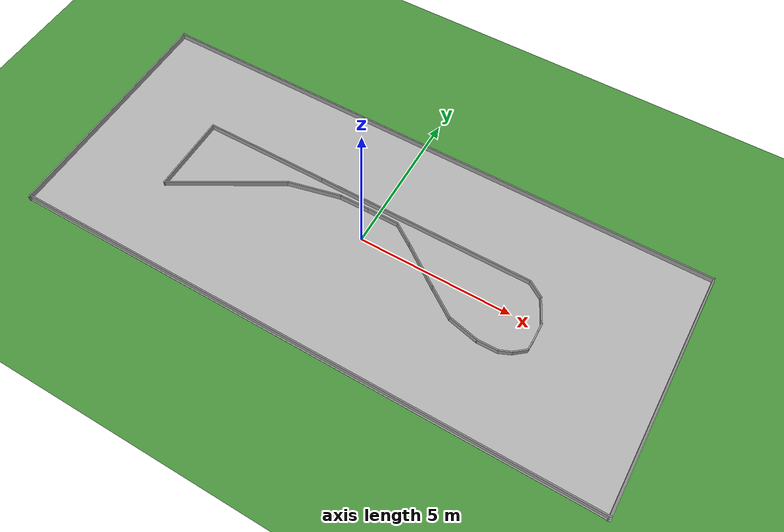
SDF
<sdf version="1.5">
 <world name="default">
  <light name="sun" type="directional">
   <cast_shadows>0</cast_shadows>
   <pose>0 0 10 0 -0 0</pose>
   <diffuse>0.8 0.8 0.8 1</diffuse>
   <specular>0.2 0.2 0.2 1</specular>
   <attenuation>
    <range>1000</range>
    <constant>0.9</constant>
    <linear>0.01</linear>
    <quadratic>0.001</quadratic>
   </attenuation>
   <direction>-0.5 0.1 -0.9</direction>
  </light>
  <scene>
   <sky><clouds><speed>1</speed></clouds></sky>
   <ambient>0.4 0.4 0.4 1</ambient>
   <background>0.7 0.7 0.7 1</background>
   <shadows>1</shadows>
  </scene>
  <physics name="default_physics" default="0" type="ode">
   <real_time_update_rate>1000</real_time_update_rate>
   <ode>
    <solver>
     <type>quick</type>
     <iters>70</iters>
     <sor>1.3</sor>
     <use_dynamic_moi_rescaling>0</use_dynamic_moi_rescaling>
    </solver>
    <constraints>
     <cfm>0</cfm>
     <erp>0.2</erp>
     <contact_max_correcting_vel>100</contact_max_correcting_vel>
     <contact_surface_layer>0.001</contact_surface_layer>
    </constraints>
   </ode>
   <max_step_size>0.001</max_step_size>
   <real_time_factor>1</real_time_factor>
  </physics>
  <scene><ambient>0.4 0.4 0.4 1</ambient><background>0.7 0.7 0.7 1</background><shadows>1</shadows></scene>
  <spherical_coordinates>
   <surface_model>EARTH_WGS84</surface_model>
   <latitude_deg>0</latitude_deg>
   <longitude_deg>0</longitude_deg>
   <elevation>0</elevation>
   <heading_deg>0</heading_deg>
  </spherical_coordinates>
  <model name="ground_grass">
   <static>1</static>
   <link name="ground_grass">
    <collision name="collision">
     <geometry><plane><normal>0 0 1</normal><size>50 50</size></plane></geometry>
     <surface><friction><ode><mu>100</mu><mu2>50</mu2></ode></friction></surface>
    </collision>
    <visual name="visual_ground">
     <cast_shadows>0</cast_shadows>
     <pose>0 0 0.005 0 -0 0</pose>
     <geometry><plane><normal>0 0 1</normal><size>50 50</size></plane></geometry>
     <material>
      <script>
       <uri>model://ground_grass/materials/scripts</uri>
       <uri>model://ground_grass/materials/textures</uri>
       <name>Floor/Grass</name>
      </script>
     </material>
    </visual>
    <velocity_decay><linear>0</linear><angular>0</angular></velocity_decay>
   </link>
  </model>
  <model name="ucsd_track_v1">
   <static>1</static>
   <link name="link_track">
    <collision name="collision">
     <geometry><plane><normal>0 0 1</normal><size>19.431 8.0264</size></plane></geometry>
     <surface><friction><ode><mu>100</mu><mu2>50</mu2></ode></friction></surface>
    </collision>
    <visual name="visual_ground">
     <cast_shadows>0</cast_shadows>
     <pose>0 0 0.005 0 -0 0</pose>
     <geometry><plane><normal>0 0 1</normal><size>19.431 8.0264</size></plane></geometry>
     <material>
      <script>
       <uri>model://ucsd_track_v1/materials/scripts</uri>
       <uri>model://ucsd_track_v1/materials/textures</uri>
       <name>Floor/Image</name>
      </script>
     </material>
    </visual>
    <velocity_decay><linear>0</linear><angular>0</angular></velocity_decay>
   </link>
   <pose>0 0 0.001 0 -0 0</pose>
  </model>
  <gravity>0 0 -9.8</gravity>
  <magnetic_field>6e-06 2.3e-05 -4.2e-05</magnetic_field>
  <atmosphere type="adiabatic"/>
  <model name="grey_wall_3">
   <link name="link">
    <pose>0.713484 -0.011654 1.4 0 -0 0</pose>
    <inertial>
     <inertia><ixx>nan</ixx><ixy>0</ixy><ixz>0</ixz><iyy>nan</iyy><iyz>0</iyz><izz>nan</izz></inertia>
     <mass>0</mass>
    </inertial>
    <visual name="visual">
     <cast_shadows>0</cast_shadows>
     <geometry><box><size>19.3332 0.043266 0.226147</size></box></geometry>
     <material>
      <script>
       <uri>model://grey_wall/materials/scripts</uri>
       <uri>model://grey_wall/materials/textures</uri>
       <name>vrc/grey_wall</name>
      </script>
      <ambient>1 1 1 1</ambient>
      <diffuse>1 1 1 1</diffuse>
      <specular>0 0 0 1</specular>
      <emissive>0 0 0 1</emissive>
     </material>
    </visual>
    <collision name="collision">
     <geometry><box><size>19.3332 0.043266 0.226147</size></box></geometry>
     <surface>
      <friction>
       <ode><mu>1</mu><mu2>1</mu2><fdir1>0 0 0</fdir1><slip1>0</slip1><slip2>0</slip2></ode>
       <torsional>
        <coefficient>1</coefficient>
        <patch_radius>0</patch_radius>
        <surface_radius>0</surface_radius>
        <use_patch_radius>1</use_patch_radius>
        <ode><slip>0</slip></ode>
       </torsional>
      </friction>
      <bounce><restitution_coefficient>0</restitution_coefficient><threshold>1e+06</threshold></bounce>
      <contact>
       <collide_without_contact>0</collide_without_contact>
       <collide_without_contact_bitmask>1</collide_without_contact_bitmask>
       <collide_bitmask>1</collide_bitmask>
       <ode>
        <soft_cfm>0</soft_cfm>
        <soft_erp>0.2</soft_erp>
        <kp>1e+13</kp>
        <kd>1</kd>
        <max_vel>0.01</max_vel>
        <min_depth>0</min_depth>
       </ode>
       <bullet>
        <split_impulse>1</split_impulse>
        <split_impulse_penetration_threshold>-0.01</split_impulse_penetration_threshold>
        <soft_cfm>0</soft_cfm>
        <soft_erp>0.2</soft_erp>
        <kp>1e+13</kp>
        <kd>1</kd>
       </bullet>
      </contact>
     </surface>
    </collision>
   </link>
   <static>1</static>
   <pose>-0.716038 4.0109 -1.30508 0 -0 0</pose>
  </model>
  <model name="grey_wall_4">
   <link name="link">
    <pose>0.713484 -0.011654 1.4 0 -0 0</pose>
    <inertial>
     <inertia><ixx>nan</ixx><ixy>0</ixy><ixz>0</ixz><iyy>nan</iyy><iyz>0</iyz><izz>nan</izz></inertia>
     <mass>0</mass>
    </inertial>
    <visual name="visual">
     <cast_shadows>0</cast_shadows>
     <geometry><box><size>19.3332 0.043266 0.226147</size></box></geometry>
     <material>
      <script>
       <uri>model://grey_wall/materials/scripts</uri>
       <uri>model://grey_wall/materials/textures</uri>
       <name>vrc/grey_wall</name>
      </script>
      <ambient>1 1 1 1</ambient>
      <diffuse>1 1 1 1</diffuse>
      <specular>0 0 0 1</specular>
      <emissive>0 0 0 1</emissive>
     </material>
    </visual>
    <collision name="collision">
     <geometry><box><size>19.3332 0.043266 0.226147</size></box></geometry>
     <surface>
      <friction>
       <ode><mu>1</mu><mu2>1</mu2><fdir1>0 0 0</fdir1><slip1>0</slip1><slip2>0</slip2></ode>
       <torsional>
        <coefficient>1</coefficient>
        <patch_radius>0</patch_radius>
        <surface_radius>0</surface_radius>
        <use_patch_radius>1</use_patch_radius>
        <ode><slip>0</slip></ode>
       </torsional>
      </friction>
      <bounce><restitution_coefficient>0</restitution_coefficient><threshold>1e+06</threshold></bounce>
      <contact>
       <collide_without_contact>0</collide_without_contact>
       <collide_without_contact_bitmask>1</collide_without_contact_bitmask>
       <collide_bitmask>1</collide_bitmask>
       <ode>
        <soft_cfm>0</soft_cfm>
        <soft_erp>0.2</soft_erp>
        <kp>1e+13</kp>
        <kd>1</kd>
        <max_vel>0.01</max_vel>
        <min_depth>0</min_depth>
       </ode>
       <bullet>
        <split_impulse>1</split_impulse>
        <split_impulse_penetration_threshold>-0.01</split_impulse_penetration_threshold>
        <soft_cfm>0</soft_cfm>
        <soft_erp>0.2</soft_erp>
        <kp>1e+13</kp>
        <kd>1</kd>
       </bullet>
      </contact>
     </surface>
    </collision>
   </link>
   <static>1</static>
   <pose>-0.701966 -3.93959 -1.30508 0 -0 0</pose>
  </model>
  <model name="grey_wall_5">
   <link name="link">
    <pose>-0.467859 -0.097477 1.4 0 -0 0.009516</pose>
    <inertial>
     <inertia><ixx>nan</ixx><ixy>0</ixy><ixz>0</ixz><iyy>nan</iyy><iyz>0</iyz><izz>nan</izz></inertia>
     <mass>0</mass>
    </inertial>
    <visual name="visual">
     <cast_shadows>0</cast_shadows>
     <geometry><box><size>8.07319 0.043266 0.226147</size></box></geometry>
     <material>
      <script>
       <uri>model://grey_wall/materials/scripts</uri>
       <uri>model://grey_wall/materials/textures</uri>
       <name>vrc/grey_wall</name>
      </script>
      <ambient>1 1 1 1</ambient>
      <diffuse>1 1 1 1</diffuse>
      <specular>0 0 0 1</specular>
      <emissive>0 0 0 1</emissive>
     </material>
    </visual>
    <collision name="collision">
     <geometry><box><size>8.07319 0.043266 0.226147</size></box></geometry>
     <surface>
      <friction>
       <ode><mu>1</mu><mu2>1</mu2><fdir1>0 0 0</fdir1><slip1>0</slip1><slip2>0</slip2></ode>
       <torsional>
        <coefficient>1</coefficient>
        <patch_radius>0</patch_radius>
        <surface_radius>0</surface_radius>
        <use_patch_radius>1</use_patch_radius>
        <ode><slip>0</slip></ode>
       </torsional>
      </friction>
      <bounce><restitution_coefficient>0</restitution_coefficient><threshold>1e+06</threshold></bounce>
      <contact>
       <collide_without_contact>0</collide_without_contact>
       <collide_without_contact_bitmask>1</collide_without_contact_bitmask>
       <collide_bitmask>1</collide_bitmask>
       <ode>
        <soft_cfm>0</soft_cfm>
        <soft_erp>0.2</soft_erp>
        <kp>1e+13</kp>
        <kd>1</kd>
        <max_vel>0.01</max_vel>
        <min_depth>0</min_depth>
       </ode>
       <bullet>
        <split_impulse>1</split_impulse>
        <split_impulse_penetration_threshold>-0.01</split_impulse_penetration_threshold>
        <soft_cfm>0</soft_cfm>
        <soft_erp>0.2</soft_erp>
        <kp>1e+13</kp>
        <kd>1</kd>
       </bullet>
      </contact>
     </surface>
    </collision>
   </link>
   <static>1</static>
   <pose>-9.73386 0.474907 -1.30963 0 -0 1.55954</pose>
  </model>
  <model name="grey_wall_6">
   <link name="link">
    <pose>-0.467859 -0.097477 1.4 0 -0 0.009516</pose>
    <inertial>
     <inertia><ixx>nan</ixx><ixy>0</ixy><ixz>0</ixz><iyy>nan</iyy><iyz>0</iyz><izz>nan</izz></inertia>
     <mass>0</mass>
    </inertial>
    <visual name="visual">
     <cast_shadows>0</cast_shadows>
     <geometry><box><size>8.07319 0.043266 0.226147</size></box></geometry>
     <material>
      <script>
       <uri>model://grey_wall/materials/scripts</uri>
       <uri>model://grey_wall/materials/textures</uri>
       <name>vrc/grey_wall</name>
      </script>
      <ambient>1 1 1 1</ambient>
      <diffuse>1 1 1 1</diffuse>
      <specular>0 0 0 1</specular>
      <emissive>0 0 0 1</emissive>
     </material>
    </visual>
    <collision name="collision">
     <geometry><box><size>8.07319 0.043266 0.226147</size></box></geometry>
     <surface>
      <friction>
       <ode><mu>1</mu><mu2>1</mu2><fdir1>0 0 0</fdir1><slip1>0</slip1><slip2>0</slip2></ode>
       <torsional>
        <coefficient>1</coefficient>
        <patch_radius>0</patch_radius>
        <surface_radius>0</surface_radius>
        <use_patch_radius>1</use_patch_radius>
        <ode><slip>0</slip></ode>
       </torsional>
      </friction>
      <bounce><restitution_coefficient>0</restitution_coefficient><threshold>1e+06</threshold></bounce>
      <contact>
       <collide_without_contact>0</collide_without_contact>
       <collide_without_contact_bitmask>1</collide_without_contact_bitmask>
       <collide_bitmask>1</collide_bitmask>
       <ode>
        <soft_cfm>0</soft_cfm>
        <soft_erp>0.2</soft_erp>
        <kp>1e+13</kp>
        <kd>1</kd>
        <max_vel>0.01</max_vel>
        <min_depth>0</min_depth>
       </ode>
       <bullet>
        <split_impulse>1</split_impulse>
        <split_impulse_penetration_threshold>-0.01</split_impulse_penetration_threshold>
        <soft_cfm>0</soft_cfm>
        <soft_erp>0.2</soft_erp>
        <kp>1e+13</kp>
        <kd>1</kd>
       </bullet>
      </contact>
     </surface>
    </collision>
   </link>
   <static>1</static>
   <pose>9.5596 0.474996 -1.30963 0 -0 1.55954</pose>
  </model>
  <model name="grey_wall_t_17_0">
   <link name="link">
    <pose>-0.003902 -0.714228 1.4 0 -0 0</pose>
    <inertial>
     <inertia><ixx>nan</ixx><ixy>0</ixy><ixz>0</ixz><iyy>nan</iyy><iyz>0</iyz><izz>nan</izz></inertia>
     <mass>0</mass>
    </inertial>
    <visual name="visual">
     <cast_shadows>0</cast_shadows>
     <geometry><box><size>7.20978 0.043266 0.226147</size></box></geometry>
     <material>
      <script>
       <uri>model://grey_wall/materials/scripts</uri>
       <uri>model://grey_wall/materials/textures</uri>
       <name>vrc/grey_wall</name>
      </script>
      <ambient>1 1 1 1</ambient>
      <diffuse>1 1 1 1</diffuse>
      <specular>0 0 0 1</specular>
      <emissive>0 0 0 1</emissive>
     </material>
    </visual>
    <collision name="collision">
     <geometry><box><size>7.20978 0.043266 0.226147</size></box></geometry>
     <surface>
      <friction>
       <ode><mu>1</mu><mu2>1</mu2><fdir1>0 0 0</fdir1><slip1>0</slip1><slip2>0</slip2></ode>
       <torsional>
        <coefficient>1</coefficient>
        <patch_radius>0</patch_radius>
        <surface_radius>0</surface_radius>
        <use_patch_radius>1</use_patch_radius>
        <ode><slip>0</slip></ode>
       </torsional>
      </friction>
      <bounce><restitution_coefficient>0</restitution_coefficient><threshold>1e+06</threshold></bounce>
      <contact>
       <collide_without_contact>0</collide_without_contact>
       <collide_without_contact_bitmask>1</collide_without_contact_bitmask>
       <collide_bitmask>1</collide_bitmask>
       <ode>
        <soft_cfm>0</soft_cfm>
        <soft_erp>0.2</soft_erp>
        <kp>1e+13</kp>
        <kd>1</kd>
        <max_vel>0.01</max_vel>
        <min_depth>0</min_depth>
       </ode>
       <bullet>
        <split_impulse>1</split_impulse>
        <split_impulse_penetration_threshold>-0.01</split_impulse_penetration_threshold>
        <soft_cfm>0</soft_cfm>
        <soft_erp>0.2</soft_erp>
        <kp>1e+13</kp>
        <kd>1</kd>
       </bullet>
      </contact>
     </surface>
    </collision>
   </link>
   <static>1</static>
   <pose>1.44796 1.91151 -1.30759 0 -0 0</pose>
  </model>
  <model name="grey_wall_t_54_0">
   <link name="link">
    <pose>-0.093806 -0.801372 1.4 0 0 -0.582215</pose>
    <inertial>
     <inertia><ixx>nan</ixx><ixy>0</ixy><ixz>0</ixz><iyy>nan</iyy><iyz>0</iyz><izz>nan</izz></inertia>
     <mass>0</mass>
    </inertial>
    <visual name="visual">
     <cast_shadows>0</cast_shadows>
     <geometry><box><size>0.633914 0.043266 0.226147</size></box></geometry>
     <material>
      <script>
       <uri>model://grey_wall/materials/scripts</uri>
       <uri>model://grey_wall/materials/textures</uri>
       <name>vrc/grey_wall</name>
      </script>
      <ambient>1 1 1 1</ambient>
      <diffuse>1 1 1 1</diffuse>
      <specular>0 0 0 1</specular>
      <emissive>0 0 0 1</emissive>
     </material>
    </visual>
    <collision name="collision">
     <geometry><box><size>0.633914 0.043266 0.226147</size></box></geometry>
     <surface>
      <friction>
       <ode><mu>1</mu><mu2>1</mu2><fdir1>0 0 0</fdir1><slip1>0</slip1><slip2>0</slip2></ode>
       <torsional>
        <coefficient>1</coefficient>
        <patch_radius>0</patch_radius>
        <surface_radius>0</surface_radius>
        <use_patch_radius>1</use_patch_radius>
        <ode><slip>0</slip></ode>
       </torsional>
      </friction>
      <bounce><restitution_coefficient>0</restitution_coefficient><threshold>1e+06</threshold></bounce>
      <contact>
       <collide_without_contact>0</collide_without_contact>
       <collide_without_contact_bitmask>1</collide_without_contact_bitmask>
       <collide_bitmask>1</collide_bitmask>
       <ode>
        <soft_cfm>0</soft_cfm>
        <soft_erp>0.2</soft_erp>
        <kp>1e+13</kp>
        <kd>1</kd>
        <max_vel>0.01</max_vel>
        <min_depth>0</min_depth>
       </ode>
       <bullet>
        <split_impulse>1</split_impulse>
        <split_impulse_penetration_threshold>-0.01</split_impulse_penetration_threshold>
        <soft_cfm>0</soft_cfm>
        <soft_erp>0.2</soft_erp>
        <kp>1e+13</kp>
        <kd>1</kd>
       </bullet>
      </contact>
     </surface>
    </collision>
   </link>
   <static>1</static>
   <pose>5.38328 1.83136 -1.30469 0 -0 0</pose>
  </model>
  <model name="grey_wall_t_57">
   <link name="link">
    <pose>0.278743 0.816097 1.4 0 -0 0.012281</pose>
    <inertial>
     <inertia><ixx>nan</ixx><ixy>0</ixy><ixz>0</ixz><iyy>nan</iyy><iyz>0</iyz><izz>nan</izz></inertia>
     <mass>0</mass>
    </inertial>
    <visual name="visual">
     <cast_shadows>0</cast_shadows>
     <geometry><box><size>0.678086 0.043266 0.226147</size></box></geometry>
     <material>
      <script>
       <uri>model://grey_wall/materials/scripts</uri>
       <uri>model://grey_wall/materials/textures</uri>
       <name>vrc/grey_wall</name>
      </script>
      <ambient>1 1 1 1</ambient>
      <diffuse>1 1 1 1</diffuse>
      <specular>0 0 0 1</specular>
      <emissive>0 0 0 1</emissive>
     </material>
    </visual>
    <collision name="collision">
     <geometry><box><size>0.678086 0.043266 0.226147</size></box></geometry>
     <surface>
      <friction>
       <ode><mu>1</mu><mu2>1</mu2><fdir1>0 0 0</fdir1><slip1>0</slip1><slip2>0</slip2></ode>
       <torsional>
        <coefficient>1</coefficient>
        <patch_radius>0</patch_radius>
        <surface_radius>0</surface_radius>
        <use_patch_radius>1</use_patch_radius>
        <ode><slip>0</slip></ode>
       </torsional>
      </friction>
      <bounce><restitution_coefficient>0</restitution_coefficient><threshold>1e+06</threshold></bounce>
      <contact>
       <collide_without_contact>0</collide_without_contact>
       <collide_without_contact_bitmask>1</collide_without_contact_bitmask>
       <collide_bitmask>1</collide_bitmask>
       <ode>
        <soft_cfm>0</soft_cfm>
        <soft_erp>0.2</soft_erp>
        <kp>1e+13</kp>
        <kd>1</kd>
        <max_vel>0.01</max_vel>
        <min_depth>0</min_depth>
       </ode>
       <bullet>
        <split_impulse>1</split_impulse>
        <split_impulse_penetration_threshold>-0.01</split_impulse_penetration_threshold>
        <soft_cfm>0</soft_cfm>
        <soft_erp>0.2</soft_erp>
        <kp>1e+13</kp>
        <kd>1</kd>
       </bullet>
      </contact>
     </surface>
    </collision>
   </link>
   <static>1</static>
   <pose>4.58267 -2.09908 -1.30469 0 -0 0</pose>
  </model>
  <model name="grey_wall_t_58">
   <link name="link">
    <pose>-0.166207 0.736843 1.4 0 -0 0.410311</pose>
    <inertial>
     <inertia><ixx>nan</ixx><ixy>0</ixy><ixz>0</ixz><iyy>nan</iyy><iyz>0</iyz><izz>nan</izz></inertia>
     <mass>0</mass>
    </inertial>
    <visual name="visual">
     <cast_shadows>0</cast_shadows>
     <geometry><box><size>0.42434 0.043266 0.226147</size></box></geometry>
     <material>
      <script>
       <uri>model://grey_wall/materials/scripts</uri>
       <uri>model://grey_wall/materials/textures</uri>
       <name>vrc/grey_wall</name>
      </script>
      <ambient>1 1 1 1</ambient>
      <diffuse>1 1 1 1</diffuse>
      <specular>0 0 0 1</specular>
      <emissive>0 0 0 1</emissive>
     </material>
    </visual>
    <collision name="collision">
     <geometry><box><size>0.42434 0.043266 0.226147</size></box></geometry>
     <surface>
      <friction>
       <ode><mu>1</mu><mu2>1</mu2><fdir1>0 0 0</fdir1><slip1>0</slip1><slip2>0</slip2></ode>
       <torsional>
        <coefficient>1</coefficient>
        <patch_radius>0</patch_radius>
        <surface_radius>0</surface_radius>
        <use_patch_radius>1</use_patch_radius>
        <ode><slip>0</slip></ode>
       </torsional>
      </friction>
      <bounce><restitution_coefficient>0</restitution_coefficient><threshold>1e+06</threshold></bounce>
      <contact>
       <collide_without_contact>0</collide_without_contact>
       <collide_without_contact_bitmask>1</collide_without_contact_bitmask>
       <collide_bitmask>1</collide_bitmask>
       <ode>
        <soft_cfm>0</soft_cfm>
        <soft_erp>0.2</soft_erp>
        <kp>1e+13</kp>
        <kd>1</kd>
        <max_vel>0.01</max_vel>
        <min_depth>0</min_depth>
       </ode>
       <bullet>
        <split_impulse>1</split_impulse>
        <split_impulse_penetration_threshold>-0.01</split_impulse_penetration_threshold>
        <soft_cfm>0</soft_cfm>
        <soft_erp>0.2</soft_erp>
        <kp>1e+13</kp>
        <kd>1</kd>
       </bullet>
      </contact>
     </surface>
    </collision>
   </link>
   <static>1</static>
   <pose>5.53718 -1.934 -1.30539 0 -0 0</pose>
  </model>
  <model name="grey_wall_t_56">
   <link name="link">
    <pose>0.040235 0.882164 1.4 0 -0 0.68984</pose>
    <inertial>
     <inertia><ixx>nan</ixx><ixy>0</ixy><ixz>0</ixz><iyy>nan</iyy><iyz>0</iyz><izz>nan</izz></inertia>
     <mass>0</mass>
    </inertial>
    <visual name="visual">
     <cast_shadows>0</cast_shadows>
     <geometry><box><size>0.471992 0.043266 0.226147</size></box></geometry>
     <material>
      <script>
       <uri>model://grey_wall/materials/scripts</uri>
       <uri>model://grey_wall/materials/textures</uri>
       <name>vrc/grey_wall</name>
      </script>
      <ambient>1 1 1 1</ambient>
      <diffuse>1 1 1 1</diffuse>
      <specular>0 0 0 1</specular>
      <emissive>0 0 0 1</emissive>
     </material>
    </visual>
    <collision name="collision">
     <geometry><box><size>0.471992 0.043266 0.226147</size></box></geometry>
     <surface>
      <friction>
       <ode><mu>1</mu><mu2>1</mu2><fdir1>0 0 0</fdir1><slip1>0</slip1><slip2>0</slip2></ode>
       <torsional>
        <coefficient>1</coefficient>
        <patch_radius>0</patch_radius>
        <surface_radius>0</surface_radius>
        <use_patch_radius>1</use_patch_radius>
        <ode><slip>0</slip></ode>
       </torsional>
      </friction>
      <bounce><restitution_coefficient>0</restitution_coefficient><threshold>1e+06</threshold></bounce>
      <contact>
       <collide_without_contact>0</collide_without_contact>
       <collide_without_contact_bitmask>1</collide_without_contact_bitmask>
       <collide_bitmask>1</collide_bitmask>
       <ode>
        <soft_cfm>0</soft_cfm>
        <soft_erp>0.2</soft_erp>
        <kp>1e+13</kp>
        <kd>1</kd>
        <max_vel>0.01</max_vel>
        <min_depth>0</min_depth>
       </ode>
       <bullet>
        <split_impulse>1</split_impulse>
        <split_impulse_penetration_threshold>-0.01</split_impulse_penetration_threshold>
        <soft_cfm>0</soft_cfm>
        <soft_erp>0.2</soft_erp>
        <kp>1e+13</kp>
        <kd>1</kd>
       </bullet>
      </contact>
     </surface>
    </collision>
   </link>
   <static>1</static>
   <pose>5.69053 -1.8541 -1.30539 0 -0 0</pose>
  </model>
  <model name="grey_wall_t_16_1">
   <link name="link">
    <pose>-0.003115 -0.719844 1.4 0 -0 0</pose>
    <inertial>
     <inertia><ixx>nan</ixx><ixy>0</ixy><ixz>0</ixz><iyy>nan</iyy><iyz>0</iyz><izz>nan</izz></inertia>
     <mass>0</mass>
    </inertial>
    <visual name="visual">
     <cast_shadows>0</cast_shadows>
     <geometry><box><size>6.4233 0.043266 0.226147</size></box></geometry>
     <material>
      <script>
       <uri>model://grey_wall/materials/scripts</uri>
       <uri>model://grey_wall/materials/textures</uri>
       <name>vrc/grey_wall</name>
      </script>
      <ambient>1 1 1 1</ambient>
      <diffuse>1 1 1 1</diffuse>
      <specular>0 0 0 1</specular>
      <emissive>0 0 0 1</emissive>
     </material>
    </visual>
    <collision name="collision">
     <geometry><box><size>6.4233 0.043266 0.226147</size></box></geometry>
     <surface>
      <friction>
       <ode><mu>1</mu><mu2>1</mu2><fdir1>0 0 0</fdir1><slip1>0</slip1><slip2>0</slip2></ode>
       <torsional>
        <coefficient>1</coefficient>
        <patch_radius>0</patch_radius>
        <surface_radius>0</surface_radius>
        <use_patch_radius>1</use_patch_radius>
        <ode><slip>0</slip></ode>
       </torsional>
      </friction>
      <bounce><restitution_coefficient>0</restitution_coefficient><threshold>1e+06</threshold></bounce>
      <contact>
       <collide_without_contact>0</collide_without_contact>
       <collide_without_contact_bitmask>1</collide_without_contact_bitmask>
       <collide_bitmask>1</collide_bitmask>
       <ode>
        <soft_cfm>0</soft_cfm>
        <soft_erp>0.2</soft_erp>
        <kp>1e+13</kp>
        <kd>1</kd>
        <max_vel>0.01</max_vel>
        <min_depth>0</min_depth>
       </ode>
       <bullet>
        <split_impulse>1</split_impulse>
        <split_impulse_penetration_threshold>-0.01</split_impulse_penetration_threshold>
        <soft_cfm>0</soft_cfm>
        <soft_erp>0.2</soft_erp>
        <kp>1e+13</kp>
        <kd>1</kd>
       </bullet>
      </contact>
     </surface>
    </collision>
   </link>
   <static>1</static>
   <pose>-3.14799 1.91993 -1.30759 0 -0 0</pose>
  </model>
  <model name="grey_wall_t_50_r_0">
   <link name="link">
    <pose>-0.457678 -1.33157 1.4 0 0 -1.1196</pose>
    <inertial>
     <inertia><ixx>nan</ixx><ixy>0</ixy><ixz>0</ixz><iyy>nan</iyy><iyz>0</iyz><izz>nan</izz></inertia>
     <mass>0</mass>
    </inertial>
    <visual name="visual">
     <cast_shadows>0</cast_shadows>
     <geometry><box><size>0.86914 0.043266 0.226147</size></box></geometry>
     <material>
      <script>
       <uri>model://grey_wall/materials/scripts</uri>
       <uri>model://grey_wall/materials/textures</uri>
       <name>vrc/grey_wall</name>
      </script>
      <ambient>1 1 1 1</ambient>
      <diffuse>1 1 1 1</diffuse>
      <specular>0 0 0 1</specular>
      <emissive>0 0 0 1</emissive>
     </material>
    </visual>
    <collision name="collision">
     <geometry><box><size>0.86914 0.043266 0.226147</size></box></geometry>
     <surface>
      <friction>
       <ode><mu>1</mu><mu2>1</mu2><fdir1>0 0 0</fdir1><slip1>0</slip1><slip2>0</slip2></ode>
       <torsional>
        <coefficient>1</coefficient>
        <patch_radius>0</patch_radius>
        <surface_radius>0</surface_radius>
        <use_patch_radius>1</use_patch_radius>
        <ode><slip>0</slip></ode>
       </torsional>
      </friction>
      <bounce><restitution_coefficient>0</restitution_coefficient><threshold>1e+06</threshold></bounce>
      <contact>
       <collide_without_contact>0</collide_without_contact>
       <collide_without_contact_bitmask>1</collide_without_contact_bitmask>
       <collide_bitmask>1</collide_bitmask>
       <ode>
        <soft_cfm>0</soft_cfm>
        <soft_erp>0.2</soft_erp>
        <kp>1e+13</kp>
        <kd>1</kd>
        <max_vel>0.01</max_vel>
        <min_depth>0</min_depth>
       </ode>
       <bullet>
        <split_impulse>1</split_impulse>
        <split_impulse_penetration_threshold>-0.01</split_impulse_penetration_threshold>
        <soft_cfm>0</soft_cfm>
        <soft_erp>0.2</soft_erp>
        <kp>1e+13</kp>
        <kd>1</kd>
       </bullet>
      </contact>
     </surface>
    </collision>
   </link>
   <static>1</static>
   <pose>6.17777 1.80909 -1.30539 0 -0 0</pose>
  </model>
  <model name="grey_wall_t_49_r">
   <link name="link">
    <pose>-0.80713 -0.991182 1.4 0 -0 1.59363</pose>
    <inertial>
     <inertia><ixx>nan</ixx><ixy>0</ixy><ixz>0</ixz><iyy>nan</iyy><iyz>0</iyz><izz>nan</izz></inertia>
     <mass>0</mass>
    </inertial>
    <visual name="visual">
     <cast_shadows>0</cast_shadows>
     <geometry><box><size>0.298243 0.043266 0.226147</size></box></geometry>
     <material>
      <script>
       <uri>model://grey_wall/materials/scripts</uri>
       <uri>model://grey_wall/materials/textures</uri>
       <name>vrc/grey_wall</name>
      </script>
      <ambient>1 1 1 1</ambient>
      <diffuse>1 1 1 1</diffuse>
      <specular>0 0 0 1</specular>
      <emissive>0 0 0 1</emissive>
     </material>
    </visual>
    <collision name="collision">
     <geometry><box><size>0.298243 0.043266 0.226147</size></box></geometry>
     <surface>
      <friction>
       <ode><mu>1</mu><mu2>1</mu2><fdir1>0 0 0</fdir1><slip1>0</slip1><slip2>0</slip2></ode>
       <torsional>
        <coefficient>1</coefficient>
        <patch_radius>0</patch_radius>
        <surface_radius>0</surface_radius>
        <use_patch_radius>1</use_patch_radius>
        <ode><slip>0</slip></ode>
       </torsional>
      </friction>
      <bounce><restitution_coefficient>0</restitution_coefficient><threshold>1e+06</threshold></bounce>
      <contact>
       <collide_without_contact>0</collide_without_contact>
       <collide_without_contact_bitmask>1</collide_without_contact_bitmask>
       <collide_bitmask>1</collide_bitmask>
       <ode>
        <soft_cfm>0</soft_cfm>
        <soft_erp>0.2</soft_erp>
        <kp>1e+13</kp>
        <kd>1</kd>
        <max_vel>0.01</max_vel>
        <min_depth>0</min_depth>
       </ode>
       <bullet>
        <split_impulse>1</split_impulse>
        <split_impulse_penetration_threshold>-0.01</split_impulse_penetration_threshold>
        <soft_cfm>0</soft_cfm>
        <soft_erp>0.2</soft_erp>
        <kp>1e+13</kp>
        <kd>1</kd>
       </bullet>
      </contact>
     </surface>
    </collision>
   </link>
   <static>1</static>
   <pose>6.71399 0.950272 -1.30539 0 -0 0</pose>
  </model>
  <model name="grey_wall_t_55_r">
   <link name="link">
    <pose>-0.870523 0.535779 1.4 0 -0 1.58821</pose>
    <inertial>
     <inertia><ixx>nan</ixx><ixy>0</ixy><ixz>0</ixz><iyy>nan</iyy><iyz>0</iyz><izz>nan</izz></inertia>
     <mass>0</mass>
    </inertial>
    <visual name="visual">
     <cast_shadows>0</cast_shadows>
     <geometry><box><size>0.395823 0.043266 0.226147</size></box></geometry>
     <material>
      <script>
       <uri>model://grey_wall/materials/scripts</uri>
       <uri>model://grey_wall/materials/textures</uri>
       <name>vrc/grey_wall</name>
      </script>
      <ambient>1 1 1 1</ambient>
      <diffuse>1 1 1 1</diffuse>
      <specular>0 0 0 1</specular>
      <emissive>0 0 0 1</emissive>
     </material>
    </visual>
    <collision name="collision">
     <geometry><box><size>0.395823 0.043266 0.226147</size></box></geometry>
     <surface>
      <friction>
       <ode><mu>1</mu><mu2>1</mu2><fdir1>0 0 0</fdir1><slip1>0</slip1><slip2>0</slip2></ode>
       <torsional>
        <coefficient>1</coefficient>
        <patch_radius>0</patch_radius>
        <surface_radius>0</surface_radius>
        <use_patch_radius>1</use_patch_radius>
        <ode><slip>0</slip></ode>
       </torsional>
      </friction>
      <bounce><restitution_coefficient>0</restitution_coefficient><threshold>1e+06</threshold></bounce>
      <contact>
       <collide_without_contact>0</collide_without_contact>
       <collide_without_contact_bitmask>1</collide_without_contact_bitmask>
       <collide_bitmask>1</collide_bitmask>
       <ode>
        <soft_cfm>0</soft_cfm>
        <soft_erp>0.2</soft_erp>
        <kp>1e+13</kp>
        <kd>1</kd>
        <max_vel>0.01</max_vel>
        <min_depth>0</min_depth>
       </ode>
       <bullet>
        <split_impulse>1</split_impulse>
        <split_impulse_penetration_threshold>-0.01</split_impulse_penetration_threshold>
        <soft_cfm>0</soft_cfm>
        <soft_erp>0.2</soft_erp>
        <kp>1e+13</kp>
        <kd>1</kd>
       </bullet>
      </contact>
     </surface>
    </collision>
   </link>
   <static>1</static>
   <pose>6.78367 -0.908327 -1.30539 0 -0 0</pose>
  </model>
  <model name="grey_wall_t_62_r">
   <link name="link">
    <pose>-0.481177 0.715037 1.4 0 -0 1.54799</pose>
    <inertial>
     <inertia><ixx>nan</ixx><ixy>0</ixy><ixz>0</ixz><iyy>nan</iyy><iyz>0</iyz><izz>nan</izz></inertia>
     <mass>0</mass>
    </inertial>
    <visual name="visual">
     <cast_shadows>0</cast_shadows>
     <geometry><box><size>0.28845 0.043266 0.226147</size></box></geometry>
     <material>
      <script>
       <uri>model://grey_wall/materials/scripts</uri>
       <uri>model://grey_wall/materials/textures</uri>
       <name>vrc/grey_wall</name>
      </script>
      <ambient>1 1 1 1</ambient>
      <diffuse>1 1 1 1</diffuse>
      <specular>0 0 0 1</specular>
      <emissive>0 0 0 1</emissive>
     </material>
    </visual>
    <collision name="collision">
     <geometry><box><size>0.28845 0.043266 0.226147</size></box></geometry>
     <surface>
      <friction>
       <ode><mu>1</mu><mu2>1</mu2><fdir1>0 0 0</fdir1><slip1>0</slip1><slip2>0</slip2></ode>
       <torsional>
        <coefficient>1</coefficient>
        <patch_radius>0</patch_radius>
        <surface_radius>0</surface_radius>
        <use_patch_radius>1</use_patch_radius>
        <ode><slip>0</slip></ode>
       </torsional>
      </friction>
      <bounce><restitution_coefficient>0</restitution_coefficient><threshold>1e+06</threshold></bounce>
      <contact>
       <collide_without_contact>0</collide_without_contact>
       <collide_without_contact_bitmask>1</collide_without_contact_bitmask>
       <collide_bitmask>1</collide_bitmask>
       <ode>
        <soft_cfm>0</soft_cfm>
        <soft_erp>0.2</soft_erp>
        <kp>1e+13</kp>
        <kd>1</kd>
        <max_vel>0.01</max_vel>
        <min_depth>0</min_depth>
       </ode>
       <bullet>
        <split_impulse>1</split_impulse>
        <split_impulse_penetration_threshold>-0.01</split_impulse_penetration_threshold>
        <soft_cfm>0</soft_cfm>
        <soft_erp>0.2</soft_erp>
        <kp>1e+13</kp>
        <kd>1</kd>
       </bullet>
      </contact>
     </surface>
    </collision>
   </link>
   <static>1</static>
   <pose>6.39158 -1.4103 -1.30539 0 -0 0</pose>
  </model>
  <model name="grey_wall_t_59_r">
   <link name="link">
    <pose>-0.04551 0.824422 1.4 0 0 -0.230923</pose>
    <inertial>
     <inertia><ixx>nan</ixx><ixy>0</ixy><ixz>0</ixz><iyy>nan</iyy><iyz>0</iyz><izz>nan</izz></inertia>
     <mass>0</mass>
    </inertial>
    <visual name="visual">
     <cast_shadows>0</cast_shadows>
     <geometry><box><size>1.03683 0.043266 0.226147</size></box></geometry>
     <material>
      <script>
       <uri>model://grey_wall/materials/scripts</uri>
       <uri>model://grey_wall/materials/textures</uri>
       <name>vrc/grey_wall</name>
      </script>
      <ambient>1 1 1 1</ambient>
      <diffuse>1 1 1 1</diffuse>
      <specular>0 0 0 1</specular>
      <emissive>0 0 0 1</emissive>
     </material>
    </visual>
    <collision name="collision">
     <geometry><box><size>1.03683 0.043266 0.226147</size></box></geometry>
     <surface>
      <friction>
       <ode><mu>1</mu><mu2>1</mu2><fdir1>0 0 0</fdir1><slip1>0</slip1><slip2>0</slip2></ode>
       <torsional>
        <coefficient>1</coefficient>
        <patch_radius>0</patch_radius>
        <surface_radius>0</surface_radius>
        <use_patch_radius>1</use_patch_radius>
        <ode><slip>0</slip></ode>
       </torsional>
      </friction>
      <bounce><restitution_coefficient>0</restitution_coefficient><threshold>1e+06</threshold></bounce>
      <contact>
       <collide_without_contact>0</collide_without_contact>
       <collide_without_contact_bitmask>1</collide_without_contact_bitmask>
       <collide_bitmask>1</collide_bitmask>
       <ode>
        <soft_cfm>0</soft_cfm>
        <soft_erp>0.2</soft_erp>
        <kp>1e+13</kp>
        <kd>1</kd>
        <max_vel>0.01</max_vel>
        <min_depth>0</min_depth>
       </ode>
       <bullet>
        <split_impulse>1</split_impulse>
        <split_impulse_penetration_threshold>-0.01</split_impulse_penetration_threshold>
        <soft_cfm>0</soft_cfm>
        <soft_erp>0.2</soft_erp>
        <kp>1e+13</kp>
        <kd>1</kd>
       </bullet>
      </contact>
     </surface>
    </collision>
   </link>
   <static>1</static>
   <pose>4.09311 -1.99771 -1.30469 0 -0 0</pose>
  </model>
  <model name="grey_wall_t_31_r_">
   <link name="link">
    <pose>-0.075035 0.790379 1.4 0 0 -0.614231</pose>
    <inertial>
     <inertia><ixx>nan</ixx><ixy>0</ixy><ixz>0</ixz><iyy>nan</iyy><iyz>0</iyz><izz>nan</izz></inertia>
     <mass>0</mass>
    </inertial>
    <visual name="visual">
     <cast_shadows>0</cast_shadows>
     <geometry><box><size>1.15403 0.043266 0.226147</size></box></geometry>
     <material>
      <script>
       <uri>model://grey_wall/materials/scripts</uri>
       <uri>model://grey_wall/materials/textures</uri>
       <name>vrc/grey_wall</name>
      </script>
      <ambient>1 1 1 1</ambient>
      <diffuse>1 1 1 1</diffuse>
      <specular>0 0 0 1</specular>
      <emissive>0 0 0 1</emissive>
     </material>
    </visual>
    <collision name="collision">
     <geometry><box><size>1.15403 0.043266 0.226147</size></box></geometry>
     <surface>
      <friction>
       <ode><mu>1</mu><mu2>1</mu2><fdir1>0 0 0</fdir1><slip1>0</slip1><slip2>0</slip2></ode>
       <torsional>
        <coefficient>1</coefficient>
        <patch_radius>0</patch_radius>
        <surface_radius>0</surface_radius>
        <use_patch_radius>1</use_patch_radius>
        <ode><slip>0</slip></ode>
       </torsional>
      </friction>
      <bounce><restitution_coefficient>0</restitution_coefficient><threshold>1e+06</threshold></bounce>
      <contact>
       <collide_without_contact>0</collide_without_contact>
       <collide_without_contact_bitmask>1</collide_without_contact_bitmask>
       <collide_bitmask>1</collide_bitmask>
       <ode>
        <soft_cfm>0</soft_cfm>
        <soft_erp>0.2</soft_erp>
        <kp>1e+13</kp>
        <kd>1</kd>
        <max_vel>0.01</max_vel>
        <min_depth>0</min_depth>
       </ode>
       <bullet>
        <split_impulse>1</split_impulse>
        <split_impulse_penetration_threshold>-0.01</split_impulse_penetration_threshold>
        <soft_cfm>0</soft_cfm>
        <soft_erp>0.2</soft_erp>
        <kp>1e+13</kp>
        <kd>1</kd>
       </bullet>
      </contact>
     </surface>
    </collision>
   </link>
   <static>1</static>
   <pose>3.16473 -1.52452 -1.30469 0 -0 0</pose>
  </model>
  <model name="grey_wall_t_28_r">
   <link name="link">
    <pose>0.090722 0.671951 1.4 0 0 -0.630195</pose>
    <inertial>
     <inertia><ixx>nan</ixx><ixy>0</ixy><ixz>0</ixz><iyy>nan</iyy><iyz>0</iyz><izz>nan</izz></inertia>
     <mass>0</mass>
    </inertial>
    <visual name="visual">
     <cast_shadows>0</cast_shadows>
     <geometry><box><size>1.62445 0.043266 0.226147</size></box></geometry>
     <material>
      <script>
       <uri>model://grey_wall/materials/scripts</uri>
       <uri>model://grey_wall/materials/textures</uri>
       <name>vrc/grey_wall</name>
      </script>
      <ambient>1 1 1 1</ambient>
      <diffuse>1 1 1 1</diffuse>
      <specular>0 0 0 1</specular>
      <emissive>0 0 0 1</emissive>
     </material>
    </visual>
    <collision name="collision">
     <geometry><box><size>1.62445 0.043266 0.226147</size></box></geometry>
     <surface>
      <friction>
       <ode><mu>1</mu><mu2>1</mu2><fdir1>0 0 0</fdir1><slip1>0</slip1><slip2>0</slip2></ode>
       <torsional>
        <coefficient>1</coefficient>
        <patch_radius>0</patch_radius>
        <surface_radius>0</surface_radius>
        <use_patch_radius>1</use_patch_radius>
        <ode><slip>0</slip></ode>
       </torsional>
      </friction>
      <bounce><restitution_coefficient>0</restitution_coefficient><threshold>1e+06</threshold></bounce>
      <contact>
       <collide_without_contact>0</collide_without_contact>
       <collide_without_contact_bitmask>1</collide_without_contact_bitmask>
       <collide_bitmask>1</collide_bitmask>
       <ode>
        <soft_cfm>0</soft_cfm>
        <soft_erp>0.2</soft_erp>
        <kp>1e+13</kp>
        <kd>1</kd>
        <max_vel>0.01</max_vel>
        <min_depth>0</min_depth>
       </ode>
       <bullet>
        <split_impulse>1</split_impulse>
        <split_impulse_penetration_threshold>-0.01</split_impulse_penetration_threshold>
        <soft_cfm>0</soft_cfm>
        <soft_erp>0.2</soft_erp>
        <kp>1e+13</kp>
        <kd>1</kd>
       </bullet>
      </contact>
     </surface>
    </collision>
   </link>
   <static>1</static>
   <pose>1.9243 -0.636533 -1.30469 0 -0 0</pose>
  </model>
  <model name="grey_wall_30_r">
   <link name="link">
    <pose>0.305849 0.522371 1.4 0 0 -0.000851</pose>
    <inertial>
     <inertia><ixx>0</ixx><ixy>0</ixy><ixz>0</ixz><iyy>0</iyy><iyz>0</iyz><izz>0</izz></inertia>
     <mass>0</mass>
    </inertial>
    <visual name="visual">
     <cast_shadows>0</cast_shadows>
     <geometry><box><size>1.0471 0.043266 0.226147</size></box></geometry>
     <material>
      <script>
       <uri>model://grey_wall/materials/scripts</uri>
       <uri>model://grey_wall/materials/textures</uri>
       <name>vrc/grey_wall</name>
      </script>
      <ambient>1 1 1 1</ambient>
      <diffuse>1 1 1 1</diffuse>
      <specular>0 0 0 1</specular>
      <emissive>0 0 0 1</emissive>
      <shader type="vertex"><normal_map>__default__</normal_map></shader>
     </material>
    </visual>
    <collision name="collision">
     <geometry><box><size>1.0471 0.043266 0.226147</size></box></geometry>
     <surface>
      <friction>
       <ode><mu>1</mu><mu2>1</mu2><fdir1>0 0 0</fdir1><slip1>0</slip1><slip2>0</slip2></ode>
       <torsional>
        <coefficient>1</coefficient>
        <patch_radius>0</patch_radius>
        <surface_radius>0</surface_radius>
        <use_patch_radius>1</use_patch_radius>
        <ode><slip>0</slip></ode>
       </torsional>
      </friction>
      <bounce><restitution_coefficient>0</restitution_coefficient><threshold>1e+06</threshold></bounce>
      <contact>
       <collide_without_contact>0</collide_without_contact>
       <collide_without_contact_bitmask>1</collide_without_contact_bitmask>
       <collide_bitmask>1</collide_bitmask>
       <ode>
        <soft_cfm>0</soft_cfm>
        <soft_erp>0.2</soft_erp>
        <kp>1e+13</kp>
        <kd>1</kd>
        <max_vel>0.01</max_vel>
        <min_depth>0</min_depth>
       </ode>
       <bullet>
        <split_impulse>1</split_impulse>
        <split_impulse_penetration_threshold>-0.01</split_impulse_penetration_threshold>
        <soft_cfm>0</soft_cfm>
        <soft_erp>0.2</soft_erp>
        <kp>1e+13</kp>
        <kd>1</kd>
       </bullet>
      </contact>
     </surface>
    </collision>
   </link>
   <static>1</static>
   <pose>-0.114316 0.442475 -1.30539 0 -0 0</pose>
  </model>
  <model name="grey_wall_t_29_r_0">
   <link name="link">
    <pose>0.654115 0.411624 1.4 0 0 -0.596955</pose>
    <inertial>
     <inertia><ixx>nan</ixx><ixy>0</ixy><ixz>0</ixz><iyy>nan</iyy><iyz>0</iyz><izz>nan</izz></inertia>
     <mass>0</mass>
    </inertial>
    <visual name="visual">
     <cast_shadows>0</cast_shadows>
     <geometry><box><size>0.943217 0.043266 0.226147</size></box></geometry>
     <material>
      <script>
       <uri>model://grey_wall/materials/scripts</uri>
       <uri>model://grey_wall/materials/textures</uri>
       <name>vrc/grey_wall</name>
      </script>
      <ambient>1 1 1 1</ambient>
      <diffuse>1 1 1 1</diffuse>
      <specular>0 0 0 1</specular>
      <emissive>0 0 0 1</emissive>
     </material>
    </visual>
    <collision name="collision">
     <geometry><box><size>0.943217 0.043266 0.226147</size></box></geometry>
     <surface>
      <friction>
       <ode><mu>1</mu><mu2>1</mu2><fdir1>0 0 0</fdir1><slip1>0</slip1><slip2>0</slip2></ode>
       <torsional>
        <coefficient>1</coefficient>
        <patch_radius>0</patch_radius>
        <surface_radius>0</surface_radius>
        <use_patch_radius>1</use_patch_radius>
        <ode><slip>0</slip></ode>
       </torsional>
      </friction>
      <bounce><restitution_coefficient>0</restitution_coefficient><threshold>1e+06</threshold></bounce>
      <contact>
       <collide_without_contact>0</collide_without_contact>
       <collide_without_contact_bitmask>1</collide_without_contact_bitmask>
       <collide_bitmask>1</collide_bitmask>
       <ode>
        <soft_cfm>0</soft_cfm>
        <soft_erp>0.2</soft_erp>
        <kp>1e+13</kp>
        <kd>1</kd>
        <max_vel>0.01</max_vel>
        <min_depth>0</min_depth>
       </ode>
       <bullet>
        <split_impulse>1</split_impulse>
        <split_impulse_penetration_threshold>-0.01</split_impulse_penetration_threshold>
        <soft_cfm>0</soft_cfm>
        <soft_erp>0.2</soft_erp>
        <kp>1e+13</kp>
        <kd>1</kd>
       </bullet>
      </contact>
     </surface>
    </collision>
   </link>
   <static>1</static>
   <pose>0.42335 0.292484 -1.30552 0 -0 0</pose>
  </model>
  <model name="grey_wall_t_26_r">
   <link name="link">
    <pose>0.710977 0.710033 1.4 0 -0 0.015926</pose>
    <inertial>
     <inertia><ixx>nan</ixx><ixy>0</ixy><ixz>0</ixz><iyy>nan</iyy><iyz>0</iyz><izz>nan</izz></inertia>
     <mass>0</mass>
    </inertial>
    <visual name="visual">
     <cast_shadows>0</cast_shadows>
     <geometry><box><size>1.04986 0.043266 0.226147</size></box></geometry>
     <material>
      <script>
       <uri>model://grey_wall/materials/scripts</uri>
       <uri>model://grey_wall/materials/textures</uri>
       <name>vrc/grey_wall</name>
      </script>
      <ambient>1 1 1 1</ambient>
      <diffuse>1 1 1 1</diffuse>
      <specular>0 0 0 1</specular>
      <emissive>0 0 0 1</emissive>
     </material>
    </visual>
    <collision name="collision">
     <geometry><box><size>1.04986 0.043266 0.226147</size></box></geometry>
     <surface>
      <friction>
       <ode><mu>1</mu><mu2>1</mu2><fdir1>0 0 0</fdir1><slip1>0</slip1><slip2>0</slip2></ode>
       <torsional>
        <coefficient>1</coefficient>
        <patch_radius>0</patch_radius>
        <surface_radius>0</surface_radius>
        <use_patch_radius>1</use_patch_radius>
        <ode><slip>0</slip></ode>
       </torsional>
      </friction>
      <bounce><restitution_coefficient>0</restitution_coefficient><threshold>1e+06</threshold></bounce>
      <contact>
       <collide_without_contact>0</collide_without_contact>
       <collide_without_contact_bitmask>1</collide_without_contact_bitmask>
       <collide_bitmask>1</collide_bitmask>
       <ode>
        <soft_cfm>0</soft_cfm>
        <soft_erp>0.2</soft_erp>
        <kp>1e+13</kp>
        <kd>1</kd>
        <max_vel>0.01</max_vel>
        <min_depth>0</min_depth>
       </ode>
       <bullet>
        <split_impulse>1</split_impulse>
        <split_impulse_penetration_threshold>-0.01</split_impulse_penetration_threshold>
        <soft_cfm>0</soft_cfm>
        <soft_erp>0.2</soft_erp>
        <kp>1e+13</kp>
        <kd>1</kd>
       </bullet>
      </contact>
     </surface>
    </collision>
   </link>
   <static>1</static>
   <pose>-1.52613 0.248203 -1.30539 0 -0 0</pose>
  </model>
  <model name="grey_wall_t_27_r">
   <link name="link">
    <pose>-0.087507 0.773438 1.4 0 -0 0.230591</pose>
    <inertial>
     <inertia><ixx>nan</ixx><ixy>0</ixy><ixz>0</ixz><iyy>nan</iyy><iyz>0</iyz><izz>nan</izz></inertia>
     <mass>0</mass>
    </inertial>
    <visual name="visual">
     <cast_shadows>0</cast_shadows>
     <geometry><box><size>1.80238 0.043266 0.226147</size></box></geometry>
     <material>
      <script>
       <uri>model://grey_wall/materials/scripts</uri>
       <uri>model://grey_wall/materials/textures</uri>
       <name>vrc/grey_wall</name>
      </script>
      <ambient>1 1 1 1</ambient>
      <diffuse>1 1 1 1</diffuse>
      <specular>0 0 0 1</specular>
      <emissive>0 0 0 1</emissive>
     </material>
    </visual>
    <collision name="collision">
     <geometry><box><size>1.80238 0.043266 0.226147</size></box></geometry>
     <surface>
      <friction>
       <ode><mu>1</mu><mu2>1</mu2><fdir1>0 0 0</fdir1><slip1>0</slip1><slip2>0</slip2></ode>
       <torsional>
        <coefficient>1</coefficient>
        <patch_radius>0</patch_radius>
        <surface_radius>0</surface_radius>
        <use_patch_radius>1</use_patch_radius>
        <ode><slip>0</slip></ode>
       </torsional>
      </friction>
      <bounce><restitution_coefficient>0</restitution_coefficient><threshold>1e+06</threshold></bounce>
      <contact>
       <collide_without_contact>0</collide_without_contact>
       <collide_without_contact_bitmask>1</collide_without_contact_bitmask>
       <collide_bitmask>1</collide_bitmask>
       <ode>
        <soft_cfm>0</soft_cfm>
        <soft_erp>0.2</soft_erp>
        <kp>1e+13</kp>
        <kd>1</kd>
        <max_vel>0.01</max_vel>
        <min_depth>0</min_depth>
       </ode>
       <bullet>
        <split_impulse>1</split_impulse>
        <split_impulse_penetration_threshold>-0.01</split_impulse_penetration_threshold>
        <soft_cfm>0</soft_cfm>
        <soft_erp>0.2</soft_erp>
        <kp>1e+13</kp>
        <kd>1</kd>
       </bullet>
      </contact>
     </surface>
    </collision>
   </link>
   <static>1</static>
   <pose>-2.07457 -0.020126 -1.30331 0 -0 0</pose>
  </model>
  <model name="grey_wall_t_25_r">
   <link name="link">
    <pose>-0.184314 0.780867 1.4 0 -0 0.533829</pose>
    <inertial>
     <inertia><ixx>nan</ixx><ixy>0</ixy><ixz>0</ixz><iyy>nan</iyy><iyz>0</iyz><izz>nan</izz></inertia>
     <mass>0</mass>
    </inertial>
    <visual name="visual">
     <cast_shadows>0</cast_shadows>
     <geometry><box><size>3.87835 0.043266 0.226147</size></box></geometry>
     <material>
      <script>
       <uri>model://grey_wall/materials/scripts</uri>
       <uri>model://grey_wall/materials/textures</uri>
       <name>vrc/grey_wall</name>
      </script>
      <ambient>1 1 1 1</ambient>
      <diffuse>1 1 1 1</diffuse>
      <specular>0 0 0 1</specular>
      <emissive>0 0 0 1</emissive>
      <shader type="vertex"><normal_map>__default__</normal_map></shader>
     </material>
    </visual>
    <collision name="collision">
     <geometry><box><size>3.87835 0.043266 0.226147</size></box></geometry>
     <surface>
      <friction>
       <ode><mu>1</mu><mu2>1</mu2><fdir1>0 0 0</fdir1><slip1>0</slip1><slip2>0</slip2></ode>
       <torsional>
        <coefficient>1</coefficient>
        <patch_radius>0</patch_radius>
        <surface_radius>0</surface_radius>
        <use_patch_radius>1</use_patch_radius>
        <ode><slip>0</slip></ode>
       </torsional>
      </friction>
      <bounce><restitution_coefficient>0</restitution_coefficient><threshold>1e+06</threshold></bounce>
      <contact>
       <collide_without_contact>0</collide_without_contact>
       <collide_without_contact_bitmask>1</collide_without_contact_bitmask>
       <collide_bitmask>1</collide_bitmask>
       <ode>
        <soft_cfm>0</soft_cfm>
        <soft_erp>0.2</soft_erp>
        <kp>1e+13</kp>
        <kd>1</kd>
        <max_vel>0.01</max_vel>
        <min_depth>0</min_depth>
       </ode>
       <bullet>
        <split_impulse>1</split_impulse>
        <split_impulse_penetration_threshold>-0.01</split_impulse_penetration_threshold>
        <soft_cfm>0</soft_cfm>
        <soft_erp>0.2</soft_erp>
        <kp>1e+13</kp>
        <kd>1</kd>
       </bullet>
      </contact>
     </surface>
    </collision>
   </link>
   <static>1</static>
   <pose>-4.49945 -1.20909 -1.30331 0 -0 0</pose>
  </model>
  <model name="grey_wall_t_41_r">
   <link name="link">
    <pose>-0.028563 -0.674245 1.4 0 -0 0.01296</pose>
    <inertial>
     <inertia><ixx>nan</ixx><ixy>0</ixy><ixz>0</ixz><iyy>nan</iyy><iyz>0</iyz><izz>nan</izz></inertia>
     <mass>0</mass>
    </inertial>
    <visual name="visual">
     <cast_shadows>0</cast_shadows>
     <geometry><box><size>2.67284 0.043266 0.226147</size></box></geometry>
     <material>
      <script>
       <uri>model://grey_wall/materials/scripts</uri>
       <uri>model://grey_wall/materials/textures</uri>
       <name>vrc/grey_wall</name>
      </script>
      <ambient>1 1 1 1</ambient>
      <diffuse>1 1 1 1</diffuse>
      <specular>0 0 0 1</specular>
      <emissive>0 0 0 1</emissive>
     </material>
    </visual>
    <collision name="collision">
     <geometry><box><size>2.67284 0.043266 0.226147</size></box></geometry>
     <surface>
      <friction>
       <ode><mu>1</mu><mu2>1</mu2><fdir1>0 0 0</fdir1><slip1>0</slip1><slip2>0</slip2></ode>
       <torsional>
        <coefficient>1</coefficient>
        <patch_radius>0</patch_radius>
        <surface_radius>0</surface_radius>
        <use_patch_radius>1</use_patch_radius>
        <ode><slip>0</slip></ode>
       </torsional>
      </friction>
      <bounce><restitution_coefficient>0</restitution_coefficient><threshold>1e+06</threshold></bounce>
      <contact>
       <collide_without_contact>0</collide_without_contact>
       <collide_without_contact_bitmask>1</collide_without_contact_bitmask>
       <collide_bitmask>1</collide_bitmask>
       <ode>
        <soft_cfm>0</soft_cfm>
        <soft_erp>0.2</soft_erp>
        <kp>1e+13</kp>
        <kd>1</kd>
        <max_vel>0.01</max_vel>
        <min_depth>0</min_depth>
       </ode>
       <bullet>
        <split_impulse>1</split_impulse>
        <split_impulse_penetration_threshold>-0.01</split_impulse_penetration_threshold>
        <soft_cfm>0</soft_cfm>
        <soft_erp>0.2</soft_erp>
        <kp>1e+13</kp>
        <kd>1</kd>
       </bullet>
      </contact>
     </surface>
    </collision>
   </link>
   <static>1</static>
   <pose>-7.0448 -0.073707 -1.30963 0 -0 1.55954</pose>
  </model>
 </world>
</sdf>
